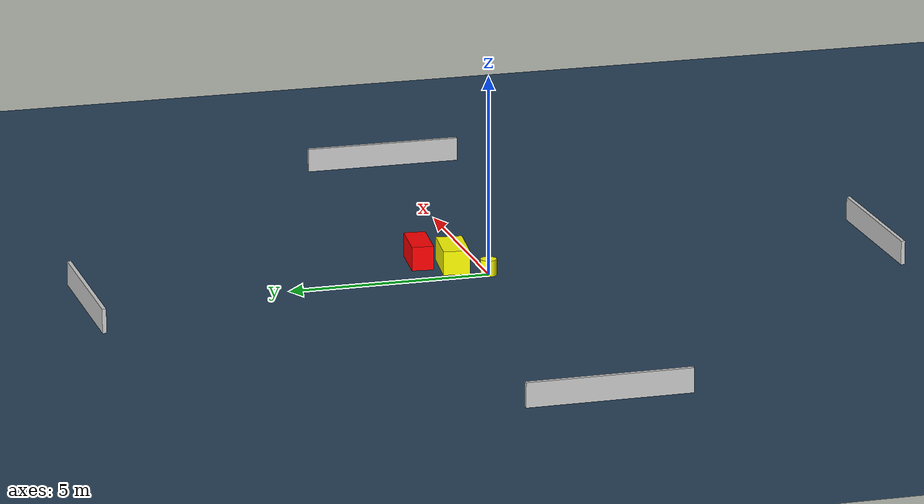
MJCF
<?xml version="1.0" ?>
<mujoco model="generated_environment">
  <option timestep="0.01" integrator="RK4" cone="elliptic"/>
  <default>
    <geom density="1"/>
  </default>
  <asset>
    <texture builtin="gradient" height="3072" name="skybox" rgb1="0.3 0.5 0.7" rgb2="0 0 0" type="skybox" width="512"/>
    <texture builtin="checker" height="300" name="groundplane" rgb1="0.2 0.3 0.4" rgb2="0.1 0.2 0.3" type="2d" width="300"/>
    <material name="groundplane" reflectance="0.2" texrepeat="5 5" texture="groundplane"/>
  </asset>
  <worldbody>
    <light dir="0 0 -1" directional="true" pos="0 0 1.5"/>
    <geom condim="3" friction="0.5 0.005 0.001" material="groundplane" name="floor" pos="0 0 0" size="0 0 0.05" type="plane"/>
    <body name="walls">
      <geom name="wall_1" condim="4" pos="-10.0 0.0 0.3" rgba="0.800000011920929 0.800000011920929 0.800000011920929 1.0" size="0.05 2.0 0.3" type="box"/>
      <geom name="wall_2" condim="4" pos="10.0 0.0 0.3" rgba="0.800000011920929 0.800000011920929 0.800000011920929 1.0" size="0.05 2.0 0.3" type="box"/>
      <geom name="wall_3" condim="4" pos="0.0 -10.0 0.3" rgba="0.800000011920929 0.800000011920929 0.800000011920929 1.0" size="2.0 0.05 0.3" type="box"/>
      <geom name="wall_4" condim="4" pos="0.0 10.0 0.3" rgba="0.800000011920929 0.800000011920929 0.800000011920929 1.0" size="2.0 0.05 0.3" type="box"/>
    </body>
    <body name="robot">
      <joint name="joint_x" type="slide" pos="0 0 0" axis="1 0 0"/>
      <joint name="joint_y" type="slide" pos="0 0 0" axis="0 1 0"/>
      <geom name="robot" type="cylinder" pos="0.0 0.0 0.2" size="0.2 0.2 0.0" mass="5.0" friction="1.0 0.005 0.0001" condim="4" rgba="1.0 1.0 0.0 1.0"/>
    </body>
    <body name="obstacle_1_movable">
      <geom name="obstacle_1_movable" condim="4" pos="0.8218695907990594 0.6780404930795606 0.3" euler="0 0 353.1517789292493" friction="0.0 0.005 0.001" rgba="1.0 1.0 0.0 1.0" size="0.6333007954056675 0.3253975453989918 0.3" type="box" mass="0.1"/>
      <joint type="free"/>
    </body>
    <body name="obstacle_2_static">
      <geom name="obstacle_2_static" condim="4" pos="1.405687871894666 1.383810419268526 0.3" euler="0 0 84.09397161246652" friction="0.0 0.005 0.001" rgba="1.0 0.0 0.0 1.0" size="0.27154099132128684 0.631944825935816 0.3" type="box"/>
    </body>
  </worldbody>
  <actuator>
    <motor name="actuator_x" joint="joint_x" gear="1" ctrlrange="-1 1"/>
    <motor name="actuator_y" joint="joint_y" gear="1" ctrlrange="-1 1"/>
  </actuator>
</mujoco>
